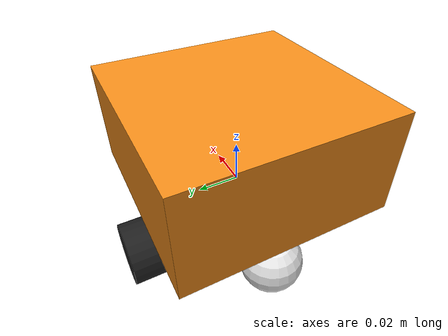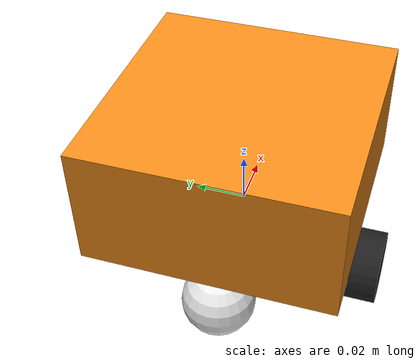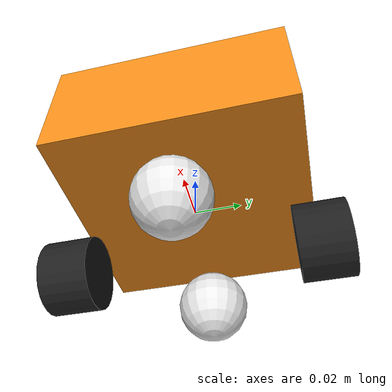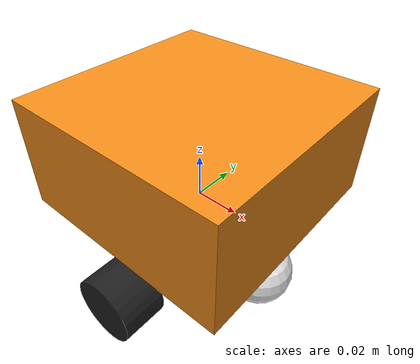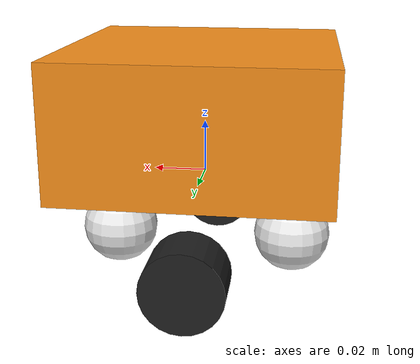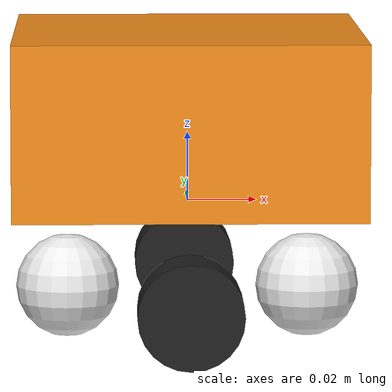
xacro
<?xml version="1.0"?>
<!-- Basic differential drive mobile base -->
<robot xmlns:xacro="http://www.ros.org/wiki/xacro" name="diffdrive_robot">
  <xacro:arg name="prefix" default="" />
  <xacro:arg name="use_mock_hardware" default="false" />

  <xacro:include
    filename="$(find ros2_control_demo_description)/diffbot/urdf/diffbot_description.urdf.xacro" />

  <!-- Import Rviz colors -->
  <xacro:include
    filename="$(find ros2_control_demo_description)/diffbot/urdf/diffbot.materials.xacro" />

  <!-- Import diffbot ros2_control description -->
  <xacro:include
    filename="$(find ros2_control_demo_example_2)/ros2_control/diffbot.ros2_control.xacro" />

  <xacro:diffbot prefix="$(arg prefix)" />

  <xacro:diffbot_ros2_control
    name="DiffBot" prefix="$(arg prefix)" use_mock_hardware="$(arg use_mock_hardware)" />

</robot>

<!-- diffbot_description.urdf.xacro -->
<robot xmlns:xacro="http://www.ros.org/wiki/xacro">

  <xacro:macro name="diffbot" params="prefix">

    <!-- Constants for robot dimensions -->
    <xacro:property name="PI" value="3.1415926535897931" />
    <xacro:property name="base_mass" value="0.3" /> <!-- arbitrary value for base mass -->
    <xacro:property name="base_width" value="0.1" />
    <xacro:property name="base_length" value="0.1" />
    <xacro:property name="base_height" value="0.05" />
    <xacro:property name="wheel_mass" value="0.3" /> <!-- arbitrary value for wheel mass -->
    <xacro:property name="wheel_len" value="0.020" />
    <xacro:property name="wheel_radius" value="0.015" />
    <xacro:property name="caster_wheel_mass" value="0.1" /> <!-- arbitrary value for caster wheel
    mass -->
    <xacro:property name="caster_wheel_radius" value="0.015" />
    <xacro:property name="z_offset" value="-${base_height/2}" /> <!-- Space btw top of beam and the
    each joint -->

    <!-- Base Link -->
    <link name="${prefix}base_link">
      <collision>
        <origin xyz="0 0 0" rpy="0 0 0" />
        <geometry>
          <box size="${base_width} ${base_length} ${base_height}" />
        </geometry>
      </collision>

      <visual>
        <origin xyz="0 0 ${base_height/2}" rpy="0 0 0" />
        <geometry>
          <box size="${base_width} ${base_length} ${base_height}" />
        </geometry>
        <material name="orange" />
      </visual>

      <inertial>
        <origin xyz="0 0 0" rpy="0 0 0" />
        <mass value="${base_mass}" />
        <inertia
          ixx="${base_mass / 12.0 * (base_length*base_length + base_height*base_height)}" ixy="0.0"
          ixz="0.0"
          iyy="${base_mass / 12.0 * (base_height*base_height + base_width*base_width)}" iyz="0.0"
          izz="${base_mass / 12.0 * (base_width*base_width + base_length*base_length)}" />
      </inertial>
    </link>

    <!-- left front wheel Joint -->
    <joint name="${prefix}left_front_wheel_joint" type="continuous">
      <parent link="${prefix}base_link" />
      <child link="${prefix}left_front_wheel" />
      <origin xyz="0 -${base_width/2} ${z_offset}" rpy="0 0 0" />
      <axis xyz="0 1 0" />
      <dynamics damping="0.2" />
    </joint>

    <!-- left front wheel Link -->
    <link name="${prefix}left_front_wheel">
      <collision>
        <origin xyz="0 0 0" rpy="${PI/2} 0 0" />
        <geometry>
          <cylinder length="${wheel_len}" radius="${wheel_radius}" />
        </geometry>
      </collision>

      <visual>
        <origin xyz="0 0 0" rpy="${PI/2} 0 0" />
        <geometry>
          <cylinder length="${wheel_len}" radius="${wheel_radius}" />
        </geometry>
        <material name="black" />
      </visual>

      <inertial>
        <origin xyz="0 0 0" rpy="${PI/2} 0 0" />
        <mass value="${wheel_mass}" />
        <inertia
          ixx="${wheel_mass / 12.0 * (3*wheel_radius*wheel_radius + wheel_len*wheel_len)}" ixy="0.0"
          ixz="0.0"
          iyy="${wheel_mass / 12.0 * (3*wheel_radius*wheel_radius + wheel_len*wheel_len)}" iyz="0.0"
          izz="${wheel_mass / 2.0 * wheel_radius*wheel_radius}" />
      </inertial>
    </link>

    <!-- left back wheel Joint -->
    <joint name="${prefix}left_back_wheel_joint" type="continuous">
      <parent link="${prefix}base_link" />
      <child link="${prefix}left_back_wheel" />
      <origin xyz="0 -${base_width/2} ${z_offset}" rpy="0 0 0" />
      <axis xyz="0 1 0" />
      <dynamics damping="0.2" />
    </joint>

    <!-- left back wheel Link -->
    <link name="${prefix}left_back_wheel">
      <collision>
        <origin xyz="0 0 0" rpy="${PI/2} 0 0" />
        <geometry>
          <cylinder length="${wheel_len}" radius="${wheel_radius}" />
        </geometry>
      </collision>

      <visual>
        <origin xyz="0 0 0" rpy="${PI/2} 0 0" />
        <geometry>
          <cylinder length="${wheel_len}" radius="${wheel_radius}" />
        </geometry>
        <material name="black" />
      </visual>

      <inertial>
        <origin xyz="0 0 0" rpy="${PI/2} 0 0" />
        <mass value="${wheel_mass}" />
        <inertia
          ixx="${wheel_mass / 12.0 * (3*wheel_radius*wheel_radius + wheel_len*wheel_len)}" ixy="0.0"
          ixz="0.0"
          iyy="${wheel_mass / 12.0 * (3*wheel_radius*wheel_radius + wheel_len*wheel_len)}" iyz="0.0"
          izz="${wheel_mass / 2.0 * wheel_radius*wheel_radius}" />
      </inertial>
    </link>

    <!-- right front wheel Joint -->
    <joint name="${prefix}right_front_wheel_joint" type="continuous">
      <parent link="${prefix}base_link" />
      <child link="${prefix}right_front_wheel" />
      <origin xyz="0 ${base_width/2} ${z_offset}" rpy="0 0 0" />
      <axis xyz="0 1 0" />
      <dynamics damping="0.2" />
    </joint>

    <!-- right front wheel Link -->
    <link name="${prefix}right_front_wheel">
      <collision>
        <origin xyz="0 0 0" rpy="${PI/2} 0 0" />
        <geometry>
          <cylinder length="${wheel_len}" radius="${wheel_radius}" />
        </geometry>
      </collision>

      <visual>
        <origin xyz="0 0 0" rpy="${PI/2} 0 0" />
        <geometry>
          <cylinder length="${wheel_len}" radius="${wheel_radius}" />
        </geometry>
        <material name="black" />
      </visual>

      <inertial>
        <origin xyz="0 0 0" rpy="${PI/2} 0 0" />
        <mass value="${wheel_mass}" />
        <inertia
          ixx="${wheel_mass / 12.0 * (3*wheel_radius*wheel_radius + wheel_len*wheel_len)}" ixy="0.0"
          ixz="0.0"
          iyy="${wheel_mass / 12.0 * (3*wheel_radius*wheel_radius + wheel_len*wheel_len)}" iyz="0.0"
          izz="${wheel_mass / 2.0 * wheel_radius*wheel_radius}" />
      </inertial>
    </link>

    <!-- right back wheel Joint -->
    <joint name="${prefix}right_back_wheel_joint" type="continuous">
      <parent link="${prefix}base_link" />
      <child link="${prefix}right_back_wheel" />
      <origin xyz="0 ${base_width/2} ${z_offset}" rpy="0 0 0" />
      <axis xyz="0 1 0" />
      <dynamics damping="0.2" />
    </joint>

    <!-- right back wheel Link -->
    <link name="${prefix}right_back_wheel">
      <collision>
        <origin xyz="0 0 0" rpy="${PI/2} 0 0" />
        <geometry>
          <cylinder length="${wheel_len}" radius="${wheel_radius}" />
        </geometry>
      </collision>

      <visual>
        <origin xyz="0 0 0" rpy="${PI/2} 0 0" />
        <geometry>
          <cylinder length="${wheel_len}" radius="${wheel_radius}" />
        </geometry>
        <material name="black" />
      </visual>

      <inertial>
        <origin xyz="0 0 0" rpy="${PI/2} 0 0" />
        <mass value="${wheel_mass}" />
        <inertia
          ixx="${wheel_mass / 12.0 * (3*wheel_radius*wheel_radius + wheel_len*wheel_len)}" ixy="0.0"
          ixz="0.0"
          iyy="${wheel_mass / 12.0 * (3*wheel_radius*wheel_radius + wheel_len*wheel_len)}" iyz="0.0"
          izz="${wheel_mass / 2.0 * wheel_radius*wheel_radius}" />
      </inertial>
    </link>

    <joint name="${prefix}caster_frontal_wheel_joint" type="fixed">
      <parent link="${prefix}base_link" />
      <child link="${prefix}caster_frontal_wheel" />
      <origin xyz="${base_width/2 - caster_wheel_radius} 0 ${z_offset}" rpy="0 0 0" />
    </joint>

    <!-- caster frontal wheel Link -->
    <link name="${prefix}caster_frontal_wheel">
      <collision>
        <origin xyz="0 0 0" rpy="0 0 0" />
        <geometry>
          <sphere radius="${caster_wheel_radius}" />
        </geometry>
      </collision>

      <visual>
        <origin xyz="0 0 0" rpy="0 0 0" />
        <geometry>
          <sphere radius="${caster_wheel_radius}" />
        </geometry>
        <material name="white" />
      </visual>

      <inertial>
        <origin xyz="0 0 0" rpy="0 0 0" />
        <mass value="${caster_wheel_mass}" />
        <inertia
          ixx="${caster_wheel_mass * 0.4 * (caster_wheel_radius * caster_wheel_radius)}" ixy="0.0"
          ixz="0.0"
          iyy="${caster_wheel_mass * 0.4 * (caster_wheel_radius * caster_wheel_radius)}" iyz="0.0"
          izz="${caster_wheel_mass * 0.4 * (caster_wheel_radius * caster_wheel_radius)}" />
      </inertial>
    </link>

    <joint name="${prefix}caster_rear_wheel_joint" type="fixed">
      <parent link="${prefix}base_link" />
      <child link="${prefix}caster_rear_wheel" />
      <origin xyz="${-base_width/2 + caster_wheel_radius} 0 ${z_offset}" rpy="0 0 0" />
    </joint>

    <!-- caster rear wheel Link -->
    <link name="${prefix}caster_rear_wheel">
      <collision>
        <origin xyz="0 0 0" rpy="0 0 0" />
        <geometry>
          <sphere radius="${caster_wheel_radius}" />
        </geometry>
      </collision>

      <visual>
        <origin xyz="0 0 0" rpy="0 0 0" />
        <geometry>
          <sphere radius="${caster_wheel_radius}" />
        </geometry>
        <material name="white" />
      </visual>

      <inertial>
        <origin xyz="0 0 0" rpy="0 0 0" />
        <mass value="${caster_wheel_mass}" />
        <inertia
          ixx="${caster_wheel_mass * 0.4 * (caster_wheel_radius * caster_wheel_radius)}" ixy="0.0"
          ixz="0.0"
          iyy="${caster_wheel_mass * 0.4 * (caster_wheel_radius * caster_wheel_radius)}" iyz="0.0"
          izz="${caster_wheel_mass * 0.4 * (caster_wheel_radius * caster_wheel_radius)}" />
      </inertial>
    </link>

  </xacro:macro>

</robot>
